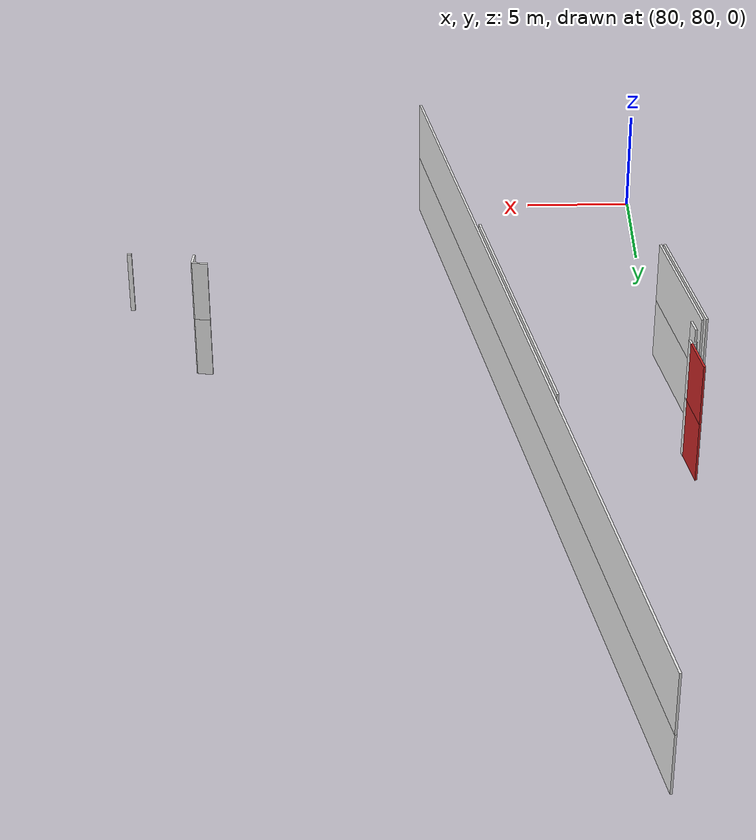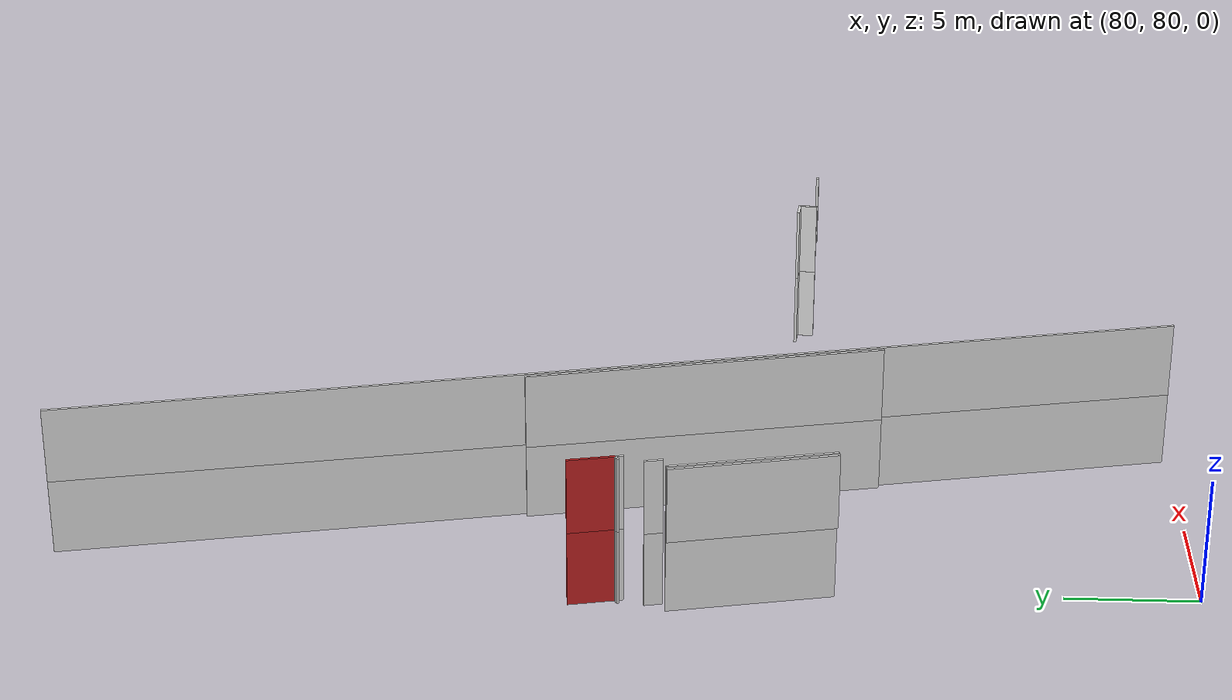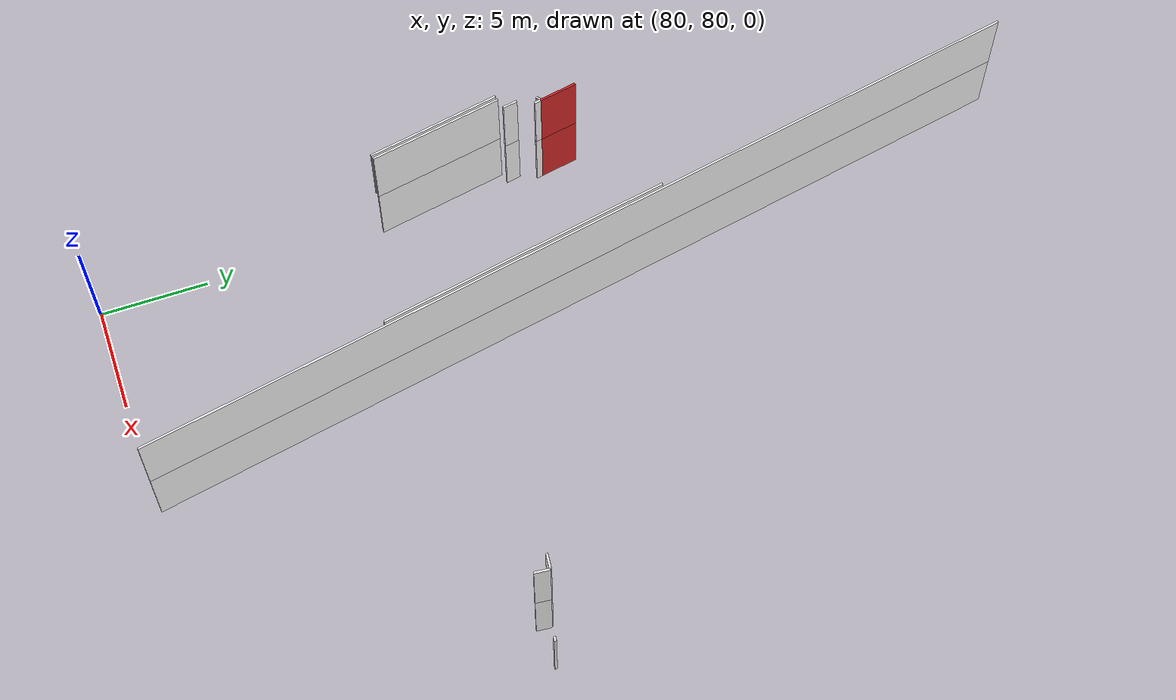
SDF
<sdf version="1.6">
 <world name="default">
  <model name="wall_79.2_102.2_1.5">
   <static>true</static>
   <pose>79.18499999999767 102.20999999996275 1.5 0 0 -1.3744936626731843</pose>
   <link name="link">
    <visual name="visual">
     <geometry><box><size>1.7944637079631676 0.1 3</size></box></geometry>
     <material>
      <script><uri>file://media/materials/scripts/gazebo.material</uri><name>Gazebo/Red</name></script>
     </material>
    </visual>
    <collision name="collision"><geometry><box><size>1.7944637079631676 0.1 3</size></box></geometry></collision>
   </link>
  </model>
  <model name="wall_79.2_102.2_4.5">
   <static>true</static>
   <pose>79.18499999999767 102.20999999996275 4.5 0 0 -1.3744936626731843</pose>
   <link name="link">
    <visual name="visual">
     <geometry><box><size>1.7944637079631676 0.1 3</size></box></geometry>
     <material>
      <script><uri>file://media/materials/scripts/gazebo.material</uri><name>Gazebo/Red</name></script>
     </material>
    </visual>
    <collision name="collision"><geometry><box><size>1.7944637079631676 0.1 3</size></box></geometry></collision>
   </link>
  </model>
  <model name="wall_79.4_101.2_1.5">
   <static>true</static>
   <pose>79.38999999998487 101.18500000005588 1.5 0 0 -1.3667783472355337</pose>
   <link name="link">
    <visual name="visual">
     <geometry><box><size>0.2961418579352255 0.1 3</size></box></geometry>
     <material>
      <script><uri>file://media/materials/scripts/gazebo.material</uri><name>Gazebo/White</name></script>
     </material>
    </visual>
    <collision name="collision"><geometry><box><size>0.2961418579352255 0.1 3</size></box></geometry></collision>
   </link>
  </model>
  <model name="wall_79.1_100.0_1.5">
   <static>true</static>
   <pose>79.125 99.96999999997206 1.5 0 0 -1.3818991459561358</pose>
   <link name="link">
    <visual name="visual">
     <geometry><box><size>0.6923149573923696 0.1 3</size></box></geometry>
     <material>
      <script><uri>file://media/materials/scripts/gazebo.material</uri><name>Gazebo/White</name></script>
     </material>
    </visual>
    <collision name="collision"><geometry><box><size>0.6923149573923696 0.1 3</size></box></geometry></collision>
   </link>
  </model>
  <model name="wall_79.3_96.4_1.5">
   <static>true</static>
   <pose>79.31500000000233 96.44999999995343 1.5 0 0 -1.37371297423356</pose>
   <link name="link">
    <visual name="visual">
     <geometry><box><size>6.281600114306311 0.1 3</size></box></geometry>
     <material>
      <script><uri>file://media/materials/scripts/gazebo.material</uri><name>Gazebo/White</name></script>
     </material>
    </visual>
    <collision name="collision"><geometry><box><size>6.281600114306311 0.1 3</size></box></geometry></collision>
   </link>
  </model>
  <model name="wall_86.7_98.2_1.5">
   <static>true</static>
   <pose>86.67500000001746 98.21000000019558 1.5 0 0 1.7677638655556385</pose>
   <link name="link">
    <visual name="visual">
     <geometry><box><size>13.745781170945156 0.1 3</size></box></geometry>
     <material>
      <script><uri>file://media/materials/scripts/gazebo.material</uri><name>Gazebo/White</name></script>
     </material>
    </visual>
    <collision name="collision"><geometry><box><size>13.745781170945156 0.1 3</size></box></geometry></collision>
   </link>
  </model>
  <model name="wall_79.3_101.3_1.5">
   <static>true</static>
   <pose>79.26499999998487 101.31000000005588 1.5 0 0 -2.9340964269693144</pose>
   <link name="link">
    <visual name="visual">
     <geometry><box><size>0.19416487839942884 0.1 3</size></box></geometry>
     <material>
      <script><uri>file://media/materials/scripts/gazebo.material</uri><name>Gazebo/White</name></script>
     </material>
    </visual>
    <collision name="collision"><geometry><box><size>0.19416487839942884 0.1 3</size></box></geometry></collision>
   </link>
  </model>
  <model name="wall_79.2_101.2_1.5">
   <static>true</static>
   <pose>79.17999999999302 101.24500000011176 1.5 0 0 -1.3521273803731177</pose>
   <link name="link">
    <visual name="visual">
     <geometry><box><size>0.0921954444315063 0.1 3</size></box></geometry>
     <material>
      <script><uri>file://media/materials/scripts/gazebo.material</uri><name>Gazebo/White</name></script>
     </material>
    </visual>
    <collision name="collision"><geometry><box><size>0.0921954444315063 0.1 3</size></box></geometry></collision>
   </link>
  </model>
  <model name="wall_101.0_94.1_1.5">
   <static>true</static>
   <pose>100.98500000001513 94.125 1.5 0 0 1.4696929551082138</pose>
   <link name="link">
    <visual name="visual">
     <geometry><box><size>0.6935416357843824 0.1 3</size></box></geometry>
     <material>
      <script><uri>file://media/materials/scripts/gazebo.material</uri><name>Gazebo/White</name></script>
     </material>
    </visual>
    <collision name="collision"><geometry><box><size>0.6935416357843824 0.1 3</size></box></geometry></collision>
   </link>
  </model>
  <model name="wall_100.7_94.5_1.5">
   <static>true</static>
   <pose>100.6700000000128 94.51000000000931 1.5 0 0 3.0278006469995504</pose>
   <link name="link">
    <visual name="visual">
     <geometry><box><size>0.7045565981194933 0.1 3</size></box></geometry>
     <material>
      <script><uri>file://media/materials/scripts/gazebo.material</uri><name>Gazebo/White</name></script>
     </material>
    </visual>
    <collision name="collision"><geometry><box><size>0.7045565981194933 0.1 3</size></box></geometry></collision>
   </link>
  </model>
  <model name="wall_86.2_101.4_1.5">
   <static>true</static>
   <pose>86.25 101.36499999999069 1.5 0 0 1.767599820403571</pose>
   <link name="link">
    <visual name="visual">
     <geometry><box><size>43.061227339674524 0.1 3</size></box></geometry>
     <material>
      <script><uri>file://media/materials/scripts/gazebo.material</uri><name>Gazebo/White</name></script>
     </material>
    </visual>
    <collision name="collision"><geometry><box><size>43.061227339674524 0.1 3</size></box></geometry></collision>
   </link>
  </model>
  <model name="wall_79.4_101.2_4.5">
   <static>true</static>
   <pose>79.38999999998487 101.18500000005588 4.5 0 0 -1.3667783472355337</pose>
   <link name="link">
    <visual name="visual">
     <geometry><box><size>0.2961418579352255 0.1 3</size></box></geometry>
     <material>
      <script><uri>file://media/materials/scripts/gazebo.material</uri><name>Gazebo/White</name></script>
     </material>
    </visual>
    <collision name="collision"><geometry><box><size>0.2961418579352255 0.1 3</size></box></geometry></collision>
   </link>
  </model>
  <model name="wall_79.1_100.0_4.5">
   <static>true</static>
   <pose>79.125 99.96999999997206 4.5 0 0 -1.3818991459561358</pose>
   <link name="link">
    <visual name="visual">
     <geometry><box><size>0.6923149573923696 0.1 3</size></box></geometry>
     <material>
      <script><uri>file://media/materials/scripts/gazebo.material</uri><name>Gazebo/White</name></script>
     </material>
    </visual>
    <collision name="collision"><geometry><box><size>0.6923149573923696 0.1 3</size></box></geometry></collision>
   </link>
  </model>
  <model name="wall_79.3_96.4_4.5">
   <static>true</static>
   <pose>79.31500000000233 96.44999999995343 4.5 0 0 -1.37371297423356</pose>
   <link name="link">
    <visual name="visual">
     <geometry><box><size>6.281600114306311 0.1 3</size></box></geometry>
     <material>
      <script><uri>file://media/materials/scripts/gazebo.material</uri><name>Gazebo/White</name></script>
     </material>
    </visual>
    <collision name="collision"><geometry><box><size>6.281600114306311 0.1 3</size></box></geometry></collision>
   </link>
  </model>
  <model name="wall_86.7_98.2_4.5">
   <static>true</static>
   <pose>86.67500000001746 98.21000000019558 4.5 0 0 1.7677638655556385</pose>
   <link name="link">
    <visual name="visual">
     <geometry><box><size>13.745781170945156 0.1 3</size></box></geometry>
     <material>
      <script><uri>file://media/materials/scripts/gazebo.material</uri><name>Gazebo/White</name></script>
     </material>
    </visual>
    <collision name="collision"><geometry><box><size>13.745781170945156 0.1 3</size></box></geometry></collision>
   </link>
  </model>
  <model name="wall_79.3_101.3_4.5">
   <static>true</static>
   <pose>79.26499999998487 101.31000000005588 4.5 0 0 -2.9340964269693144</pose>
   <link name="link">
    <visual name="visual">
     <geometry><box><size>0.19416487839942884 0.1 3</size></box></geometry>
     <material>
      <script><uri>file://media/materials/scripts/gazebo.material</uri><name>Gazebo/White</name></script>
     </material>
    </visual>
    <collision name="collision"><geometry><box><size>0.19416487839942884 0.1 3</size></box></geometry></collision>
   </link>
  </model>
  <model name="wall_79.2_101.2_4.5">
   <static>true</static>
   <pose>79.17999999999302 101.24500000011176 4.5 0 0 -1.3521273803731177</pose>
   <link name="link">
    <visual name="visual">
     <geometry><box><size>0.0921954444315063 0.1 3</size></box></geometry>
     <material>
      <script><uri>file://media/materials/scripts/gazebo.material</uri><name>Gazebo/White</name></script>
     </material>
    </visual>
    <collision name="collision"><geometry><box><size>0.0921954444315063 0.1 3</size></box></geometry></collision>
   </link>
  </model>
  <model name="wall_79.1_96.4_4.5">
   <static>true</static>
   <pose>79.11999999999534 96.41000000014901 4.5 0 0 -1.3721523281490677</pose>
   <link name="link">
    <visual name="visual">
     <geometry><box><size>6.283565866752152 0.1 3</size></box></geometry>
     <material>
      <script><uri>file://media/materials/scripts/gazebo.material</uri><name>Gazebo/White</name></script>
     </material>
    </visual>
    <collision name="collision"><geometry><box><size>6.283565866752152 0.1 3</size></box></geometry></collision>
   </link>
  </model>
  <model name="wall_103.9_93.7_4.5">
   <static>true</static>
   <pose>103.86000000001513 93.69000000017695 4.5 0 0 3.0419240010121844</pose>
   <link name="link">
    <visual name="visual">
     <geometry><box><size>0.20099751243585498 0.1 3</size></box></geometry>
     <material>
      <script><uri>file://media/materials/scripts/gazebo.material</uri><name>Gazebo/White</name></script>
     </material>
    </visual>
    <collision name="collision"><geometry><box><size>0.20099751243585498 0.1 3</size></box></geometry></collision>
   </link>
  </model>
  <model name="wall_101.0_94.1_4.5">
   <static>true</static>
   <pose>100.98500000001513 94.125 4.5 0 0 1.4696929551082138</pose>
   <link name="link">
    <visual name="visual">
     <geometry><box><size>0.6935416357843824 0.1 3</size></box></geometry>
     <material>
      <script><uri>file://media/materials/scripts/gazebo.material</uri><name>Gazebo/White</name></script>
     </material>
    </visual>
    <collision name="collision"><geometry><box><size>0.6935416357843824 0.1 3</size></box></geometry></collision>
   </link>
  </model>
  <model name="wall_100.7_94.5_4.5">
   <static>true</static>
   <pose>100.6700000000128 94.51000000000931 4.5 0 0 3.0278006469995504</pose>
   <link name="link">
    <visual name="visual">
     <geometry><box><size>0.7045565981194933 0.1 3</size></box></geometry>
     <material>
      <script><uri>file://media/materials/scripts/gazebo.material</uri><name>Gazebo/White</name></script>
     </material>
    </visual>
    <collision name="collision"><geometry><box><size>0.7045565981194933 0.1 3</size></box></geometry></collision>
   </link>
  </model>
  <model name="wall_86.2_101.4_4.5">
   <static>true</static>
   <pose>86.25 101.36499999999069 4.5 0 0 1.767599820403571</pose>
   <link name="link">
    <visual name="visual">
     <geometry><box><size>43.061227339674524 0.1 3</size></box></geometry>
     <material>
      <script><uri>file://media/materials/scripts/gazebo.material</uri><name>Gazebo/White</name></script>
     </material>
    </visual>
    <collision name="collision"><geometry><box><size>43.061227339674524 0.1 3</size></box></geometry></collision>
   </link>
  </model>
 </world>
</sdf>
